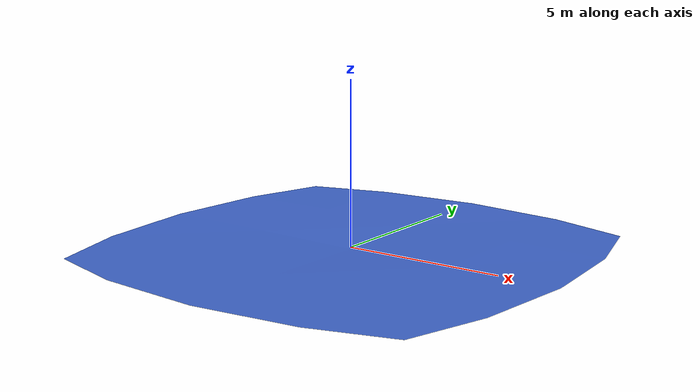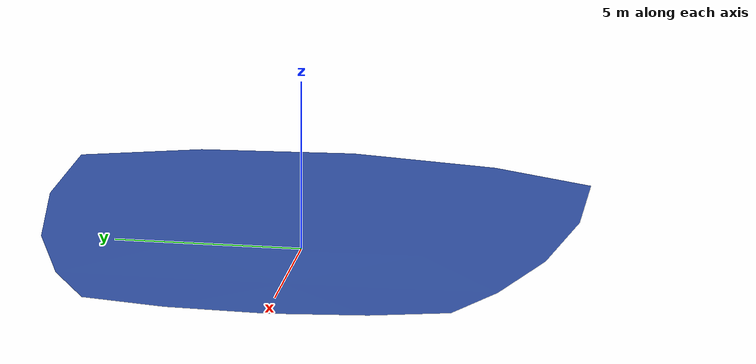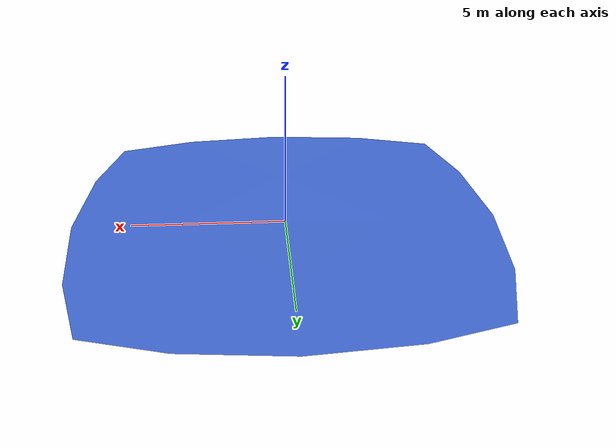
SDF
<?xml version="1.0" ?>
<sdf version="1.6">
  <model name="puddle_lake">
    <static>true</static>
    <link name="link">
      <visual name="visual">
        <geometry>
          <mesh>
            <uri>model://puddle_lake//puddle_lake.dae</uri>
          </mesh>
        </geometry>
      </visual>
    </link>
  </model>
</sdf>
